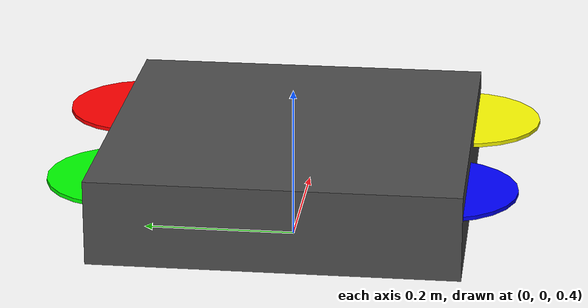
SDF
<?xml version="1.0" ?>
<sdf version="1.9">
  <world name="simple_quad_world">
    <physics name="1ms" type="ignored">
      <max_step_size>0.001</max_step_size>
      <real_time_factor>1.0</real_time_factor>
    </physics>

    <plugin filename="gz-sim-physics-system" name="gz::sim::systems::Physics"/>
    <plugin filename="gz-sim-sensors-system" name="gz::sim::systems::Sensors">
      <render_engine>ogre2</render_engine>
    </plugin>
    <plugin filename="gz-sim-imu-system" name="gz::sim::systems::Imu"/>
    <plugin filename="gz-sim-user-commands-system" name="gz::sim::systems::UserCommands"/>
    <plugin filename="gz-sim-scene-broadcaster-system" name="gz::sim::systems::SceneBroadcaster"/>

    <light type="directional" name="sun">
      <cast_shadows>true</cast_shadows>
      <pose>0 0 10 0 0 0</pose>
      <diffuse>1 1 1 1</diffuse>
      <specular>0.5 0.5 0.5 1</specular>
      <direction>-0.5 0.1 -0.9</direction>
    </light>

    <model name="ground_plane">
      <static>true</static>
      <link name="link">
        <collision name="collision">
          <geometry>
            <plane>
              <normal>0 0 1</normal>
              <size>100 100</size>
            </plane>
          </geometry>
        </collision>
        <visual name="visual">
          <geometry>
            <plane>
              <normal>0 0 1</normal>
              <size>100 100</size>
            </plane>
          </geometry>
          <material>
            <ambient>0.8 0.8 0.8 1</ambient>
            <diffuse>0.8 0.8 0.8 1</diffuse>
          </material>
        </visual>
      </link>
    </model>

    <!-- Simple quadcopter with IMU -->
    <model name="quadcopter">
      <pose>0 0 0.5 0 0 0</pose>

      <link name="base_link">
        <inertial>
          <mass>1.5</mass>
          <inertia>
            <ixx>0.029125</ixx>
            <iyy>0.029125</iyy>
            <izz>0.055225</izz>
          </inertia>
        </inertial>

        <visual name="visual">
          <geometry>
            <box>
              <size>0.47 0.47 0.11</size>
            </box>
          </geometry>
          <material>
            <ambient>0.2 0.2 0.2 1</ambient>
            <diffuse>0.3 0.3 0.3 1</diffuse>
          </material>
        </visual>

        <collision name="collision">
          <geometry>
            <box>
              <size>0.47 0.47 0.11</size>
            </box>
          </geometry>
        </collision>

        <!-- IMU Sensor -->
        <sensor name="imu_sensor" type="imu">
          <always_on>1</always_on>
          <update_rate>1000</update_rate>
          <visualize>true</visualize>
          <topic>/quadcopter/imu</topic>
          <enable_metrics>false</enable_metrics>
          <imu>
            <angular_velocity>
              <x>
                <noise type="gaussian">
                  <mean>0.0</mean>
                  <stddev>0.009</stddev>
                </noise>
              </x>
              <y>
                <noise type="gaussian">
                  <mean>0.0</mean>
                  <stddev>0.009</stddev>
                </noise>
              </y>
              <z>
                <noise type="gaussian">
                  <mean>0.0</mean>
                  <stddev>0.009</stddev>
                </noise>
              </z>
            </angular_velocity>
            <linear_acceleration>
              <x>
                <noise type="gaussian">
                  <mean>0.0</mean>
                  <stddev>0.017</stddev>
                </noise>
              </x>
              <y>
                <noise type="gaussian">
                  <mean>0.0</mean>
                  <stddev>0.017</stddev>
                </noise>
              </y>
              <z>
                <noise type="gaussian">
                  <mean>0.0</mean>
                  <stddev>0.017</stddev>
                </noise>
              </z>
            </linear_acceleration>
          </imu>
        </sensor>
      </link>

      <!-- Rotor 0 (Front Right) -->
      <link name="rotor_0">
        <pose>0.13 0.22 0.023 0 0 0</pose>
        <inertial>
          <mass>0.005</mass>
          <inertia>
            <ixx>9.75e-07</ixx>
            <iyy>0.000273104</iyy>
            <izz>0.000274004</izz>
          </inertia>
        </inertial>
        <visual name="visual">
          <geometry>
            <cylinder>
              <radius>0.1</radius>
              <length>0.005</length>
            </cylinder>
          </geometry>
          <material>
            <ambient>1 0 0 1</ambient>
            <diffuse>1 0 0 1</diffuse>
          </material>
        </visual>
      </link>

      <joint name="rotor_0_joint" type="revolute">
        <parent>base_link</parent>
        <child>rotor_0</child>
        <axis>
          <xyz>0 0 1</xyz>
          <limit>
            <lower>-1e+16</lower>
            <upper>1e+16</upper>
          </limit>
        </axis>
      </joint>

      <!-- Rotor 1 (Rear Right) -->
      <link name="rotor_1">
        <pose>-0.13 0.20 0.023 0 0 0</pose>
        <inertial>
          <mass>0.005</mass>
          <inertia>
            <ixx>9.75e-07</ixx>
            <iyy>0.000273104</iyy>
            <izz>0.000274004</izz>
          </inertia>
        </inertial>
        <visual name="visual">
          <geometry>
            <cylinder>
              <radius>0.1</radius>
              <length>0.005</length>
            </cylinder>
          </geometry>
          <material>
            <ambient>0 1 0 1</ambient>
            <diffuse>0 1 0 1</diffuse>
          </material>
        </visual>
      </link>

      <joint name="rotor_1_joint" type="revolute">
        <parent>base_link</parent>
        <child>rotor_1</child>
        <axis>
          <xyz>0 0 1</xyz>
          <limit>
            <lower>-1e+16</lower>
            <upper>1e+16</upper>
          </limit>
        </axis>
      </joint>

      <!-- Rotor 2 (Rear Left) -->
      <link name="rotor_2">
        <pose>-0.13 -0.20 0.023 0 0 0</pose>
        <inertial>
          <mass>0.005</mass>
          <inertia>
            <ixx>9.75e-07</ixx>
            <iyy>0.000273104</iyy>
            <izz>0.000274004</izz>
          </inertia>
        </inertial>
        <visual name="visual">
          <geometry>
            <cylinder>
              <radius>0.1</radius>
              <length>0.005</length>
            </cylinder>
          </geometry>
          <material>
            <ambient>0 0 1 1</ambient>
            <diffuse>0 0 1 1</diffuse>
          </material>
        </visual>
      </link>

      <joint name="rotor_2_joint" type="revolute">
        <parent>base_link</parent>
        <child>rotor_2</child>
        <axis>
          <xyz>0 0 1</xyz>
          <limit>
            <lower>-1e+16</lower>
            <upper>1e+16</upper>
          </limit>
        </axis>
      </joint>

      <!-- Rotor 3 (Front Left) -->
      <link name="rotor_3">
        <pose>0.13 -0.22 0.023 0 0 0</pose>
        <inertial>
          <mass>0.005</mass>
          <inertia>
            <ixx>9.75e-07</ixx>
            <iyy>0.000273104</iyy>
            <izz>0.000274004</izz>
          </inertia>
        </inertial>
        <visual name="visual">
          <geometry>
            <cylinder>
              <radius>0.1</radius>
              <length>0.005</length>
            </cylinder>
          </geometry>
          <material>
            <ambient>1 1 0 1</ambient>
            <diffuse>1 1 0 1</diffuse>
          </material>
        </visual>
      </link>

      <joint name="rotor_3_joint" type="revolute">
        <parent>base_link</parent>
        <child>rotor_3</child>
        <axis>
          <xyz>0 0 1</xyz>
          <limit>
            <lower>-1e+16</lower>
            <upper>1e+16</upper>
          </limit>
        </axis>
      </joint>

    </model>
  </world>
</sdf>
